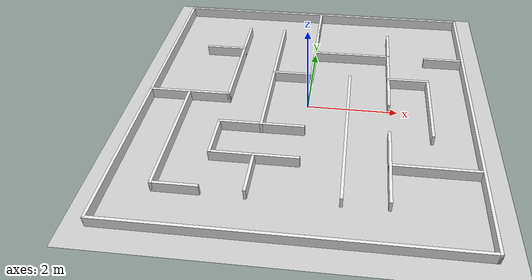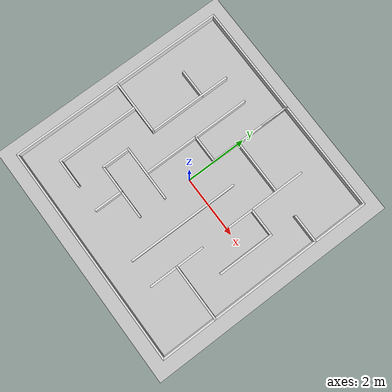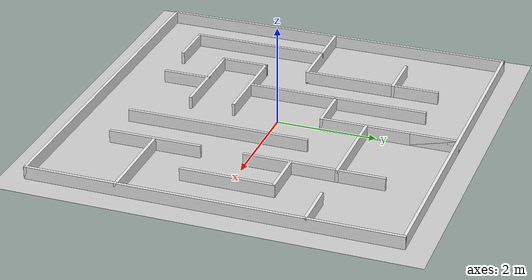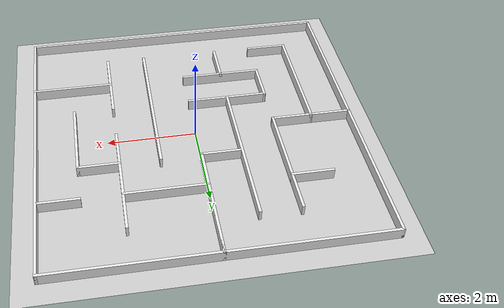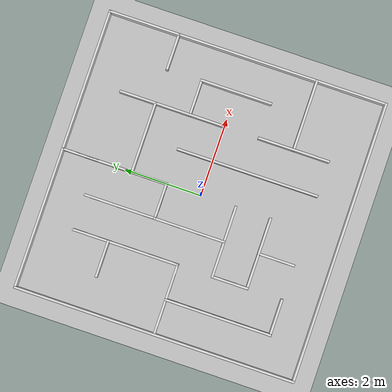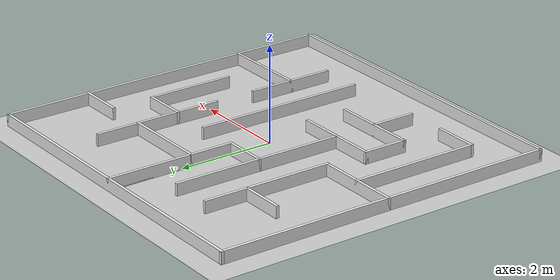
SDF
<sdf version="1.10">
 <world name="empty">
  <physics name="16ms" type="ode">
   <max_step_size>0.016</max_step_size>
   <real_time_factor>1</real_time_factor>
   <real_time_update_rate>125</real_time_update_rate>
  </physics>
  <plugin name="gz::sim::systems::Physics" filename="gz-sim-physics-system"/>
  <plugin name="gz::sim::systems::UserCommands" filename="gz-sim-user-commands-system"/>
  <plugin name="gz::sim::systems::SceneBroadcaster" filename="gz-sim-scene-broadcaster-system"/>
  <plugin name="gz::sim::systems::Contact" filename="gz-sim-contact-system"/>
  <plugin name="gz::sim::systems::Sensors" filename="gz-sim-sensors-system">
   <render_engine>ogre2</render_engine>
  </plugin>
  <plugin name="gz::sim::systems::Imu" filename="gz-sim-imu-system"/>
  <plugin filename="gz-sim-navsat-system" name="gz::sim::systems::NavSat"/>
  <spherical_coordinates>
   <surface_model>EARTH_WGS84</surface_model>
   <world_frame_orientation>ENU</world_frame_orientation>
   <latitude_deg>47.478950</latitude_deg>
   <longitude_deg>19.057785</longitude_deg>
   <elevation>0</elevation>
   <heading_deg>0</heading_deg>
  </spherical_coordinates>
  <gravity>0 0 -9.8000000000000007</gravity>
  <magnetic_field>5.5644999999999998e-06 2.2875799999999999e-05 -4.2388400000000002e-05</magnetic_field>
  <atmosphere type="adiabatic"/>
  <scene>
   <ambient>0.400000006 0.400000006 0.400000006 1</ambient>
   <background>0.699999988 0.699999988 0.699999988 1</background>
   <shadows>true</shadows>
  </scene>
  <model name="ground_plane">
   <static>true</static>
   <link name="link">
    <collision name="collision">
     <geometry><plane><normal>0 0 1</normal><size>500.0 500.0</size></plane></geometry>
     <surface><friction><ode><mu>50</mu></ode></friction></surface>
    </collision>
    <visual name="visual">
     <cast_shadows>false</cast_shadows>
     <geometry><plane><normal>0 0 1</normal><size>500.0 500.0</size></plane></geometry>
     <material>
      <script><uri>file://media/materials/scripts/gazebo.material</uri><name>Gazebo/Grey</name></script>
     </material>
    </visual>
    <inertial>
     <mass>1</mass>
     <inertia><ixx>1</ixx><ixy>0</ixy><ixz>0</ixz><iyy>1</iyy><iyz>0</iyz><izz>1</izz></inertia>
    </inertial>
   </link>
  </model>
  <model name="maze">
   <link name="Wall_1">
    <collision name="Wall_1_Collision">
     <geometry><box><size>7.26 0.06 0.25</size></box></geometry>
     <pose>0.0 0.0 0.125 0 0 0</pose>
    </collision>
    <visual name="Wall_1_Visual">
     <pose>0.0 0.0 0.125 0 0 0</pose>
     <geometry><box><size>7.26 0.06 0.25</size></box></geometry>
     <material>
      <script><uri>file://media/materials/scripts/gazebo.material</uri><name>Gazebo/White</name></script>
      <ambient>1 1 1 1</ambient>
     </material>
     <meta><layer>0</layer></meta>
    </visual>
    <pose>0.0 3.6 0.0 0 0 0</pose>
   </link>
   <link name="Wall_2">
    <collision name="Wall_2_Collision">
     <geometry><box><size>0.06 7.26 0.25</size></box></geometry>
     <pose>0.0 0.0 0.125 0 0 0</pose>
    </collision>
    <visual name="Wall_2_Visual">
     <pose>0.0 0.0 0.125 0 0 0</pose>
     <geometry><box><size>0.06 7.26 0.25</size></box></geometry>
     <material>
      <script><uri>file://media/materials/scripts/gazebo.material</uri><name>Gazebo/White</name></script>
      <ambient>1 1 1 1</ambient>
     </material>
     <meta><layer>0</layer></meta>
    </visual>
    <pose>3.6 0.0 0.0 0 0 0</pose>
   </link>
   <link name="Wall_3">
    <collision name="Wall_3_Collision">
     <geometry><box><size>7.26 0.06 0.25</size></box></geometry>
     <pose>0.0 0.0 0.125 0 0 0</pose>
    </collision>
    <visual name="Wall_3_Visual">
     <pose>0.0 0.0 0.125 0 0 0</pose>
     <geometry><box><size>7.26 0.06 0.25</size></box></geometry>
     <material>
      <script><uri>file://media/materials/scripts/gazebo.material</uri><name>Gazebo/White</name></script>
      <ambient>1 1 1 1</ambient>
     </material>
     <meta><layer>0</layer></meta>
    </visual>
    <pose>0.0 -3.6 0.0 0 0 0</pose>
   </link>
   <link name="Wall_4">
    <collision name="Wall_4_Collision">
     <geometry><box><size>0.06 7.26 0.25</size></box></geometry>
     <pose>0.0 0.0 0.125 0 0 0</pose>
    </collision>
    <visual name="Wall_4_Visual">
     <pose>0.0 0.0 0.125 0 0 0</pose>
     <geometry><box><size>0.06 7.26 0.25</size></box></geometry>
     <material>
      <script><uri>file://media/materials/scripts/gazebo.material</uri><name>Gazebo/White</name></script>
      <ambient>1 1 1 1</ambient>
     </material>
     <meta><layer>0</layer></meta>
    </visual>
    <pose>-3.6 0.0 0.0 0 0 0</pose>
   </link>
   <link name="Wall_5">
    <collision name="Wall_5_Collision">
     <geometry><box><size>0.96 0.06 0.25</size></box></geometry>
     <pose>0.0 0.0 0.125 0 0 0</pose>
    </collision>
    <visual name="Wall_5_Visual">
     <pose>0.0 0.0 0.125 0 0 0</pose>
     <geometry><box><size>0.96 0.06 0.25</size></box></geometry>
     <material>
      <script><uri>file://media/materials/scripts/gazebo.material</uri><name>Gazebo/White</name></script>
      <ambient>1 1 1 1</ambient>
     </material>
     <meta><layer>0</layer></meta>
    </visual>
    <pose>3.15 1.8 0.0 0 0 0</pose>
   </link>
   <link name="Wall_6">
    <collision name="Wall_6_Collision">
     <geometry><box><size>1.86 0.06 0.25</size></box></geometry>
     <pose>0.0 0.0 0.125 0 0 0</pose>
    </collision>
    <visual name="Wall_6_Visual">
     <pose>0.0 0.0 0.125 0 0 0</pose>
     <geometry><box><size>1.86 0.06 0.25</size></box></geometry>
     <material>
      <script><uri>file://media/materials/scripts/gazebo.material</uri><name>Gazebo/White</name></script>
      <ambient>1 1 1 1</ambient>
     </material>
     <meta><layer>0</layer></meta>
    </visual>
    <pose>0.9 1.8 0.0 0 0 0</pose>
   </link>
   <link name="Wall_7">
    <collision name="Wall_7_Collision">
     <geometry><box><size>0.96 0.06 0.25</size></box></geometry>
     <pose>0.0 0.0 0.125 0 0 0</pose>
    </collision>
    <visual name="Wall_7_Visual">
     <pose>0.0 0.0 0.125 0 0 0</pose>
     <geometry><box><size>0.96 0.06 0.25</size></box></geometry>
     <material>
      <script><uri>file://media/materials/scripts/gazebo.material</uri><name>Gazebo/White</name></script>
      <ambient>1 1 1 1</ambient>
     </material>
     <meta><layer>0</layer></meta>
    </visual>
    <pose>-2.25 1.8 0.0 0 0 0</pose>
   </link>
   <link name="Wall_8">
    <collision name="Wall_8_Collision">
     <geometry><box><size>0.96 0.06 0.25</size></box></geometry>
     <pose>0.0 0.0 0.125 0 0 0</pose>
    </collision>
    <visual name="Wall_8_Visual">
     <pose>0.0 0.0 0.125 0 0 0</pose>
     <geometry><box><size>0.96 0.06 0.25</size></box></geometry>
     <material>
      <script><uri>file://media/materials/scripts/gazebo.material</uri><name>Gazebo/White</name></script>
      <ambient>1 1 1 1</ambient>
     </material>
     <meta><layer>0</layer></meta>
    </visual>
    <pose>2.25 0.9 0.0 0 0 0</pose>
   </link>
   <link name="Wall_9">
    <collision name="Wall_9_Collision">
     <geometry><box><size>0.96 0.06 0.25</size></box></geometry>
     <pose>0.0 0.0 0.125 0 0 0</pose>
    </collision>
    <visual name="Wall_9_Visual">
     <pose>0.0 0.0 0.125 0 0 0</pose>
     <geometry><box><size>0.96 0.06 0.25</size></box></geometry>
     <material>
      <script><uri>file://media/materials/scripts/gazebo.material</uri><name>Gazebo/White</name></script>
      <ambient>1 1 1 1</ambient>
     </material>
     <meta><layer>0</layer></meta>
    </visual>
    <pose>-0.45 0.9 0.0 0 0 0</pose>
   </link>
   <link name="Wall_10">
    <collision name="Wall_10_Collision">
     <geometry><box><size>1.86 0.06 0.25</size></box></geometry>
     <pose>0.0 0.0 0.125 0 0 0</pose>
    </collision>
    <visual name="Wall_10_Visual">
     <pose>0.0 0.0 0.125 0 0 0</pose>
     <geometry><box><size>1.86 0.06 0.25</size></box></geometry>
     <material>
      <script><uri>file://media/materials/scripts/gazebo.material</uri><name>Gazebo/White</name></script>
      <ambient>1 1 1 1</ambient>
     </material>
     <meta><layer>0</layer></meta>
    </visual>
    <pose>-2.7 0.0 0.0 0 0 0</pose>
   </link>
   <link name="Wall_11">
    <collision name="Wall_11_Collision">
     <geometry><box><size>1.86 0.06 0.25</size></box></geometry>
     <pose>0.0 0.0 0.125 0 0 0</pose>
    </collision>
    <visual name="Wall_11_Visual">
     <pose>0.0 0.0 0.125 0 0 0</pose>
     <geometry><box><size>1.86 0.06 0.25</size></box></geometry>
     <material>
      <script><uri>file://media/materials/scripts/gazebo.material</uri><name>Gazebo/White</name></script>
      <ambient>1 1 1 1</ambient>
     </material>
     <meta><layer>0</layer></meta>
    </visual>
    <pose>-0.9 -0.9 0.0 0 0 0</pose>
   </link>
   <link name="Wall_12">
    <collision name="Wall_12_Collision">
     <geometry><box><size>1.86 0.06 0.25</size></box></geometry>
     <pose>0.0 0.0 0.125 0 0 0</pose>
    </collision>
    <visual name="Wall_12_Visual">
     <pose>0.0 0.0 0.125 0 0 0</pose>
     <geometry><box><size>1.86 0.06 0.25</size></box></geometry>
     <material>
      <script><uri>file://media/materials/scripts/gazebo.material</uri><name>Gazebo/White</name></script>
      <ambient>1 1 1 1</ambient>
     </material>
     <meta><layer>0</layer></meta>
    </visual>
    <pose>2.7 -1.8 0.0 0 0 0</pose>
   </link>
   <link name="Wall_13">
    <collision name="Wall_13_Collision">
     <geometry><box><size>1.86 0.06 0.25</size></box></geometry>
     <pose>0.0 0.0 0.125 0 0 0</pose>
    </collision>
    <visual name="Wall_13_Visual">
     <pose>0.0 0.0 0.125 0 0 0</pose>
     <geometry><box><size>1.86 0.06 0.25</size></box></geometry>
     <material>
      <script><uri>file://media/materials/scripts/gazebo.material</uri><name>Gazebo/White</name></script>
      <ambient>1 1 1 1</ambient>
     </material>
     <meta><layer>0</layer></meta>
    </visual>
    <pose>-0.9 -1.8 0.0 0 0 0</pose>
   </link>
   <link name="Wall_14">
    <collision name="Wall_14_Collision">
     <geometry><box><size>0.96 0.06 0.25</size></box></geometry>
     <pose>0.0 0.0 0.125 0 0 0</pose>
    </collision>
    <visual name="Wall_14_Visual">
     <pose>0.0 0.0 0.125 0 0 0</pose>
     <geometry><box><size>0.96 0.06 0.25</size></box></geometry>
     <material>
      <script><uri>file://media/materials/scripts/gazebo.material</uri><name>Gazebo/White</name></script>
      <ambient>1 1 1 1</ambient>
     </material>
     <meta><layer>0</layer></meta>
    </visual>
    <pose>-2.25 -2.7 0.0 0 0 0</pose>
   </link>
   <link name="Wall_15">
    <collision name="Wall_15_Collision">
     <geometry><box><size>0.06 2.76 0.25</size></box></geometry>
     <pose>0.0 0.0 0.125 0 0 0</pose>
    </collision>
    <visual name="Wall_15_Visual">
     <pose>0.0 0.0 0.125 0 0 0</pose>
     <geometry><box><size>0.06 2.76 0.25</size></box></geometry>
     <material>
      <script><uri>file://media/materials/scripts/gazebo.material</uri><name>Gazebo/White</name></script>
      <ambient>1 1 1 1</ambient>
     </material>
     <meta><layer>0</layer></meta>
    </visual>
    <pose>-2.7 -1.35 0.0 0 0 0</pose>
   </link>
   <link name="Wall_16">
    <collision name="Wall_16_Collision">
     <geometry><box><size>0.06 2.76 0.25</size></box></geometry>
     <pose>0.0 0.0 0.125 0 0 0</pose>
    </collision>
    <visual name="Wall_16_Visual">
     <pose>0.0 0.0 0.125 0 0 0</pose>
     <geometry><box><size>0.06 2.76 0.25</size></box></geometry>
     <material>
      <script><uri>file://media/materials/scripts/gazebo.material</uri><name>Gazebo/White</name></script>
      <ambient>1 1 1 1</ambient>
     </material>
     <meta><layer>0</layer></meta>
    </visual>
    <pose>-1.8 1.35 0.0 0 0 0</pose>
   </link>
   <link name="Wall_17">
    <collision name="Wall_17_Collision">
     <geometry><box><size>0.06 0.96 0.25</size></box></geometry>
     <pose>0.0 0.0 0.125 0 0 0</pose>
    </collision>
    <visual name="Wall_17_Visual">
     <pose>0.0 0.0 0.125 0 0 0</pose>
     <geometry><box><size>0.06 0.96 0.25</size></box></geometry>
     <material>
      <script><uri>file://media/materials/scripts/gazebo.material</uri><name>Gazebo/White</name></script>
      <ambient>1 1 1 1</ambient>
     </material>
     <meta><layer>0</layer></meta>
    </visual>
    <pose>-1.8 -1.35 0.0 0 0 0</pose>
   </link>
   <link name="Wall_18">
    <collision name="Wall_18_Collision">
     <geometry><box><size>0.06 3.66 0.25</size></box></geometry>
     <pose>0.0 0.0 0.125 0 0 0</pose>
    </collision>
    <visual name="Wall_18_Visual">
     <pose>0.0 0.0 0.125 0 0 0</pose>
     <geometry><box><size>0.06 3.66 0.25</size></box></geometry>
     <material>
      <script><uri>file://media/materials/scripts/gazebo.material</uri><name>Gazebo/White</name></script>
      <ambient>1 1 1 1</ambient>
     </material>
     <meta><layer>0</layer></meta>
    </visual>
    <pose>-0.9 0.9 0.0 0 0 0</pose>
   </link>
   <link name="Wall_19">
    <collision name="Wall_19_Collision">
     <geometry><box><size>0.06 0.96 0.25</size></box></geometry>
     <pose>0.0 0.0 0.125 0 0 0</pose>
    </collision>
    <visual name="Wall_19_Visual">
     <pose>0.0 0.0 0.125 0 0 0</pose>
     <geometry><box><size>0.06 0.96 0.25</size></box></geometry>
     <material>
      <script><uri>file://media/materials/scripts/gazebo.material</uri><name>Gazebo/White</name></script>
      <ambient>1 1 1 1</ambient>
     </material>
     <meta><layer>0</layer></meta>
    </visual>
    <pose>-0.9 -2.25 0.0 0 0 0</pose>
   </link>
   <link name="Wall_20">
    <collision name="Wall_20_Collision">
     <geometry><box><size>0.06 2.76 0.25</size></box></geometry>
     <pose>0.0 0.0 0.125 0 0 0</pose>
    </collision>
    <visual name="Wall_20_Visual">
     <pose>0.0 0.0 0.125 0 0 0</pose>
     <geometry><box><size>0.06 2.76 0.25</size></box></geometry>
     <material>
      <script><uri>file://media/materials/scripts/gazebo.material</uri><name>Gazebo/White</name></script>
      <ambient>1 1 1 1</ambient>
     </material>
     <meta><layer>0</layer></meta>
    </visual>
    <pose>0.0 2.25 0.0 0 0 0</pose>
   </link>
   <link name="Wall_21">
    <collision name="Wall_21_Collision">
     <geometry><box><size>0.06 0.96 0.25</size></box></geometry>
     <pose>0.0 0.0 0.125 0 0 0</pose>
    </collision>
    <visual name="Wall_21_Visual">
     <pose>0.0 0.0 0.125 0 0 0</pose>
     <geometry><box><size>0.06 0.96 0.25</size></box></geometry>
     <material>
      <script><uri>file://media/materials/scripts/gazebo.material</uri><name>Gazebo/White</name></script>
      <ambient>1 1 1 1</ambient>
     </material>
     <meta><layer>0</layer></meta>
    </visual>
    <pose>0.0 3.15 0.0 0 0 0</pose>
   </link>
   <link name="Wall_22">
    <collision name="Wall_22_Collision">
     <geometry><box><size>0.06 3.66 0.25</size></box></geometry>
     <pose>0.0 0.0 0.125 0 0 0</pose>
    </collision>
    <visual name="Wall_22_Visual">
     <pose>0.0 0.0 0.125 0 0 0</pose>
     <geometry><box><size>0.06 3.66 0.25</size></box></geometry>
     <material>
      <script><uri>file://media/materials/scripts/gazebo.material</uri><name>Gazebo/White</name></script>
      <ambient>1 1 1 1</ambient>
     </material>
     <meta><layer>0</layer></meta>
    </visual>
    <pose>0.9 -0.9 0.0 0 0 0</pose>
   </link>
   <link name="Wall_23">
    <collision name="Wall_23_Collision">
     <geometry><box><size>0.06 2.76 0.25</size></box></geometry>
     <pose>0.0 0.0 0.125 0 0 0</pose>
    </collision>
    <visual name="Wall_23_Visual">
     <pose>0.0 0.0 0.125 0 0 0</pose>
     <geometry><box><size>0.06 2.76 0.25</size></box></geometry>
     <material>
      <script><uri>file://media/materials/scripts/gazebo.material</uri><name>Gazebo/White</name></script>
      <ambient>1 1 1 1</ambient>
     </material>
     <meta><layer>0</layer></meta>
    </visual>
    <pose>1.8 1.35 0.0 0 0 0</pose>
   </link>
   <link name="Wall_24">
    <collision name="Wall_24_Collision">
     <geometry><box><size>0.06 1.8 0.25</size></box></geometry>
     <pose>0.0 0.0 0.125 0 0 0</pose>
    </collision>
    <visual name="Wall_24_Visual">
     <pose>0.0 0.0 0.125 0 0 0</pose>
     <geometry><box><size>0.06 1.86 0.25</size></box></geometry>
     <material>
      <script><uri>file://media/materials/scripts/gazebo.material</uri><name>Gazebo/White</name></script>
      <ambient>1 1 1 1</ambient>
     </material>
     <meta><layer>0</layer></meta>
    </visual>
    <pose>1.8 -1.8 0.0 0 0 0</pose>
   </link>
   <link name="Wall_25">
    <collision name="Wall_25_Collision">
     <geometry><box><size>0.06 1.86 0.25</size></box></geometry>
     <pose>0.0 0.0 0.125 0 0 0</pose>
    </collision>
    <visual name="Wall_25_Visual">
     <pose>0.0 0.0 0.125 0 0 0</pose>
     <geometry><box><size>0.06 1.86 0.25</size></box></geometry>
     <material>
      <script><uri>file://media/materials/scripts/gazebo.material</uri><name>Gazebo/White</name></script>
      <ambient>1 1 1 1</ambient>
     </material>
     <meta><layer>0</layer></meta>
    </visual>
    <pose>2.7 0.0 0.0 0 0 0</pose>
   </link>
   <static>true</static>
  </model>
  <light type="directional" name="sun">
   <pose>0 0 10 0 0 0</pose>
   <diffuse>0.8 0.8 0.8 1</diffuse>
   <specular>0.2 0.2 0.2 1</specular>
   <attenuation>
    <range>1000</range>
    <constant>0.9</constant>
    <linear>0.01</linear>
    <quadratic>0.001</quadratic>
   </attenuation>
   <direction>-0.5 0.1 -0.9</direction>
  </light>
 </world>
</sdf>
